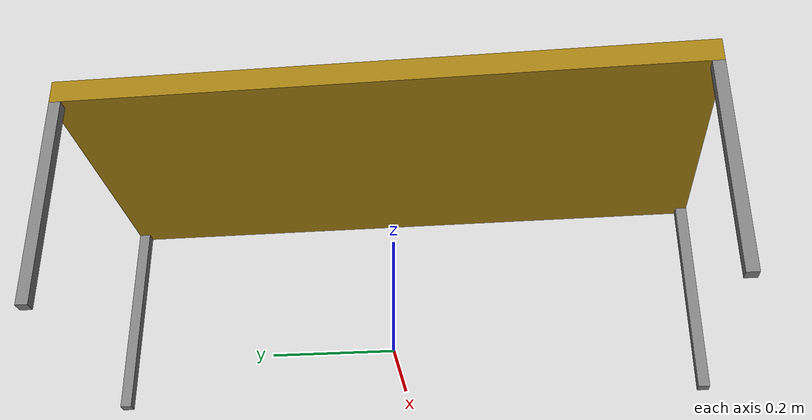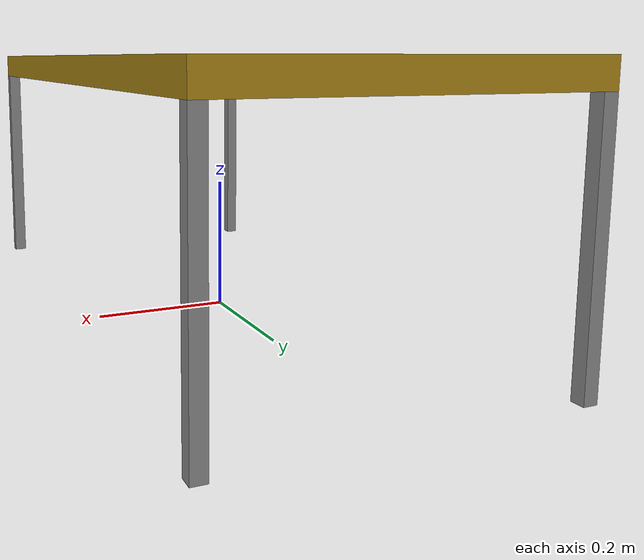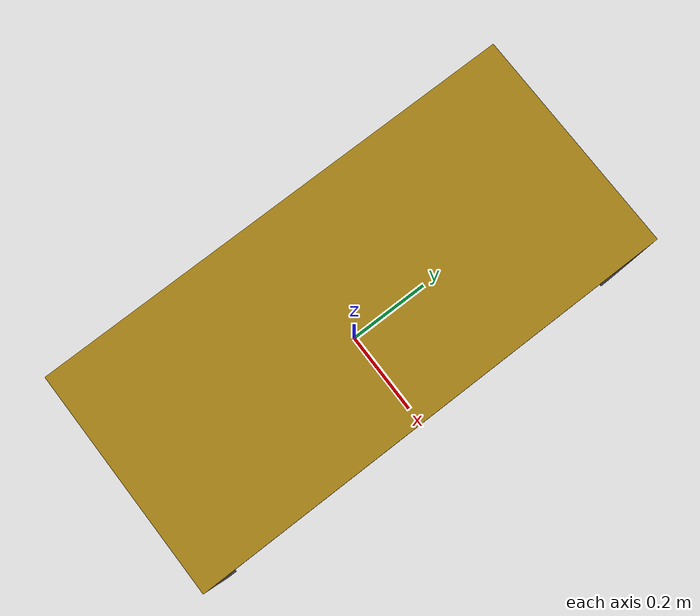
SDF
<?xml version="1.0" ?>
<sdf version="1.8">
  <model name="wooden_law_table">
    <link name="link">
      <inertial>
        <mass>1.0</mass>
      </inertial>

      <collision name="top">
        <pose>0.0 0.0 0.38 0.0 0.0 0.0</pose>
        <geometry>
          <box>
            <size>0.5 1.08 0.04</size>
          </box>
        </geometry>
      </collision>

      <visual name="top_v">
        <pose>0.0 0.0 0.38 0.0 0.0 0.0</pose>
        <geometry>
          <box>
            <size>0.5 1.08 0.04</size>
          </box>
        </geometry>

        <material>
          <ambient>0.63 0.49 0.07 1</ambient>
          <diffuse>0.63 0.49 0.07 1</diffuse>
        </material>
      </visual>

      <collision name="leg1">
        <pose>0.24 0.53 0.18 0.0 0.0 0.0</pose>
        <geometry>
          <box>
            <size>0.02 0.02 0.36</size>
          </box>
        </geometry>
      </collision>

      <visual name="leg1_v">
        <pose>0.24 0.53 0.18 0.0 0.0 0.0</pose>
        <geometry>
          <box>
            <size>0.02 0.02 0.36</size>
          </box>
        </geometry>

        <material>
          <ambient>0.5 0.5 0.5 1</ambient>
          <diffuse>0.5 0.5 0.5 1</diffuse>
        </material>
      </visual>

      <collision name="leg2">
        <pose>0.24 -0.53 0.18 0.0 0.0 0.0</pose>
        <geometry>
          <box>
            <size>0.02 0.02 0.36</size>
          </box>
        </geometry>
      </collision>

      <visual name="leg2_v">
        <pose>0.24 -0.53 0.18 0.0 0.0 0.0</pose>
        <geometry>
          <box>
            <size>0.02 0.02 0.36</size>
          </box>
        </geometry>

        <material>
          <ambient>0.5 0.5 0.5 1</ambient>
          <diffuse>0.5 0.5 0.5 1</diffuse>
        </material>
      </visual>

      <collision name="leg3">
        <pose>-0.24 -0.53 0.18 0.0 0.0 0.0</pose>
        <geometry>
          <box>
            <size>0.02 0.02 0.36</size>
          </box>
        </geometry>
      </collision>

      <visual name="leg3_v">
        <pose>-0.24 0.53 0.18 0.0 0.0 0.0</pose>
        <geometry>
          <box>
            <size>0.02 0.02 0.36</size>
          </box>
        </geometry>

        <material>
          <ambient>0.5 0.5 0.5 1</ambient>
          <diffuse>0.5 0.5 0.5 1</diffuse>
        </material>
      </visual>

      <collision name="leg4">
        <pose>-0.24 -0.53 0.18 0.0 0.0 0.0</pose>
        <geometry>
          <box>
            <size>0.02 0.02 0.36</size>
          </box>
        </geometry>
      </collision>

      <visual name="leg4_v">
        <pose>-0.24 -0.53 0.18 0.0 0.0 0.0</pose>
        <geometry>
          <box>
            <size>0.02 0.02 0.36</size>
          </box>
        </geometry>

        <material>
          <ambient>0.5 0.5 0.5 1</ambient>
          <diffuse>0.5 0.5 0.5 1</diffuse>
        </material>
      </visual>
    </link>
  </model>
</sdf>
